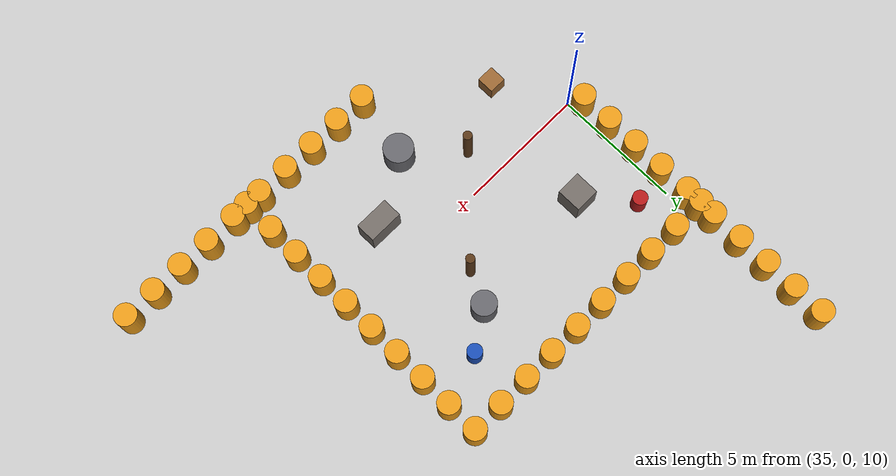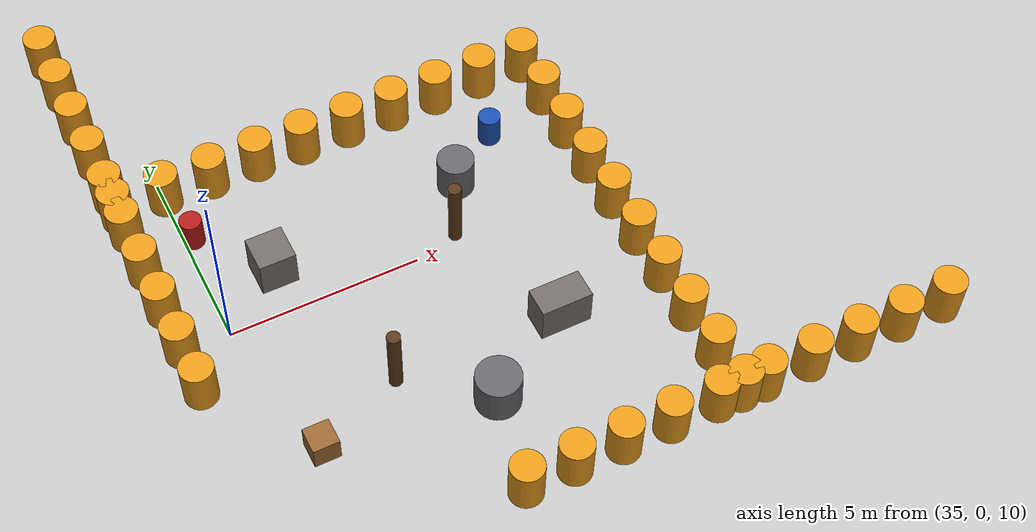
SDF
<sdf version="1.6">
 <world name="outdoor">
  <physics name="1ms" type="ignored">
   <max_step_size>0.004</max_step_size>
   <real_time_factor>1</real_time_factor>
  </physics>
  <plugin filename="ignition-gazebo-physics-system" name="ignition::gazebo::systems::Physics"/>
  <plugin filename="ignition-gazebo-user-commands-system" name="ignition::gazebo::systems::UserCommands"/>
  <plugin filename="ignition-gazebo-scene-broadcaster-system" name="ignition::gazebo::systems::SceneBroadcaster"/>
  <plugin filename="ignition-gazebo-sensors-system" name="ignition::gazebo::systems::Sensors">
   <render_engine>ogre2</render_engine>
  </plugin>
  <plugin filename="ignition-gazebo-navsat-system" name="ignition::gazebo::systems::NavSat"/>
  <spherical_coordinates>
   <surface_model>EARTH_WGS84</surface_model>
   <world_frame_orientation>ENU</world_frame_orientation>
   <latitude_deg>47.3977</latitude_deg>
   <longitude_deg>8.5456</longitude_deg>
   <elevation>0</elevation>
   <heading_deg>0</heading_deg>
  </spherical_coordinates>
  <plugin filename="ignition-gazebo-contact-system" name="ignition::gazebo::systems::Contact"/>
  <plugin filename="ignition-gazebo-imu-system" name="ignition::gazebo::systems::Imu"/>
  <light type="directional" name="sun">
   <pose>0 0 10 0 0 0</pose>
   <diffuse>0.8 0.8 0.8 1</diffuse>
   <specular>0.2 0.2 0.2 1</specular>
   <direction>-0.5 0.1 -0.9</direction>
  </light>
  <model name="post_0">
   <static>true</static>
   <pose>34.00 6.00 8.60 0 0 0</pose>
   <link name="link">
    <collision name="c">
     <geometry><cylinder><radius>0.45</radius><length>1.3</length></cylinder></geometry>
    </collision>
    <visual name="v">
     <geometry><cylinder><radius>0.45</radius><length>1.3</length></cylinder></geometry>
     <material><ambient>0.9 0.6 0.1 1</ambient><diffuse>0.9 0.6 0.1 1</diffuse></material>
    </visual>
   </link>
  </model>
  <model name="post_1">
   <static>true</static>
   <pose>52.00 -6.00 8.60 0 0 0</pose>
   <link name="link">
    <collision name="c">
     <geometry><cylinder><radius>0.45</radius><length>1.3</length></cylinder></geometry>
    </collision>
    <visual name="v">
     <geometry><cylinder><radius>0.45</radius><length>1.3</length></cylinder></geometry>
     <material><ambient>0.9 0.6 0.1 1</ambient><diffuse>0.9 0.6 0.1 1</diffuse></material>
    </visual>
   </link>
  </model>
  <model name="post_2">
   <static>true</static>
   <pose>46.00 -6.00 8.60 0 0 0</pose>
   <link name="link">
    <collision name="c">
     <geometry><cylinder><radius>0.45</radius><length>1.3</length></cylinder></geometry>
    </collision>
    <visual name="v">
     <geometry><cylinder><radius>0.45</radius><length>1.3</length></cylinder></geometry>
     <material><ambient>0.9 0.6 0.1 1</ambient><diffuse>0.9 0.6 0.1 1</diffuse></material>
    </visual>
   </link>
  </model>
  <model name="post_3">
   <static>true</static>
   <pose>34.00 12.00 8.60 0 0 0</pose>
   <link name="link">
    <collision name="c">
     <geometry><cylinder><radius>0.45</radius><length>1.3</length></cylinder></geometry>
    </collision>
    <visual name="v">
     <geometry><cylinder><radius>0.45</radius><length>1.3</length></cylinder></geometry>
     <material><ambient>0.9 0.6 0.1 1</ambient><diffuse>0.9 0.6 0.1 1</diffuse></material>
    </visual>
   </link>
  </model>
  <model name="post_4">
   <static>true</static>
   <pose>35.33 6.00 8.60 0 0 0</pose>
   <link name="link">
    <collision name="c">
     <geometry><cylinder><radius>0.45</radius><length>1.3</length></cylinder></geometry>
    </collision>
    <visual name="v">
     <geometry><cylinder><radius>0.45</radius><length>1.3</length></cylinder></geometry>
     <material><ambient>0.9 0.6 0.1 1</ambient><diffuse>0.9 0.6 0.1 1</diffuse></material>
    </visual>
   </link>
  </model>
  <model name="post_5">
   <static>true</static>
   <pose>50.67 -6.00 8.60 0 0 0</pose>
   <link name="link">
    <collision name="c">
     <geometry><cylinder><radius>0.45</radius><length>1.3</length></cylinder></geometry>
    </collision>
    <visual name="v">
     <geometry><cylinder><radius>0.45</radius><length>1.3</length></cylinder></geometry>
     <material><ambient>0.9 0.6 0.1 1</ambient><diffuse>0.9 0.6 0.1 1</diffuse></material>
    </visual>
   </link>
  </model>
  <model name="post_6">
   <static>true</static>
   <pose>46.00 -4.67 8.60 0 0 0</pose>
   <link name="link">
    <collision name="c">
     <geometry><cylinder><radius>0.45</radius><length>1.3</length></cylinder></geometry>
    </collision>
    <visual name="v">
     <geometry><cylinder><radius>0.45</radius><length>1.3</length></cylinder></geometry>
     <material><ambient>0.9 0.6 0.1 1</ambient><diffuse>0.9 0.6 0.1 1</diffuse></material>
    </visual>
   </link>
  </model>
  <model name="post_7">
   <static>true</static>
   <pose>34.00 10.67 8.60 0 0 0</pose>
   <link name="link">
    <collision name="c">
     <geometry><cylinder><radius>0.45</radius><length>1.3</length></cylinder></geometry>
    </collision>
    <visual name="v">
     <geometry><cylinder><radius>0.45</radius><length>1.3</length></cylinder></geometry>
     <material><ambient>0.9 0.6 0.1 1</ambient><diffuse>0.9 0.6 0.1 1</diffuse></material>
    </visual>
   </link>
  </model>
  <model name="post_8">
   <static>true</static>
   <pose>36.67 6.00 8.60 0 0 0</pose>
   <link name="link">
    <collision name="c">
     <geometry><cylinder><radius>0.45</radius><length>1.3</length></cylinder></geometry>
    </collision>
    <visual name="v">
     <geometry><cylinder><radius>0.45</radius><length>1.3</length></cylinder></geometry>
     <material><ambient>0.9 0.6 0.1 1</ambient><diffuse>0.9 0.6 0.1 1</diffuse></material>
    </visual>
   </link>
  </model>
  <model name="post_9">
   <static>true</static>
   <pose>49.33 -6.00 8.60 0 0 0</pose>
   <link name="link">
    <collision name="c">
     <geometry><cylinder><radius>0.45</radius><length>1.3</length></cylinder></geometry>
    </collision>
    <visual name="v">
     <geometry><cylinder><radius>0.45</radius><length>1.3</length></cylinder></geometry>
     <material><ambient>0.9 0.6 0.1 1</ambient><diffuse>0.9 0.6 0.1 1</diffuse></material>
    </visual>
   </link>
  </model>
  <model name="post_10">
   <static>true</static>
   <pose>46.00 -3.33 8.60 0 0 0</pose>
   <link name="link">
    <collision name="c">
     <geometry><cylinder><radius>0.45</radius><length>1.3</length></cylinder></geometry>
    </collision>
    <visual name="v">
     <geometry><cylinder><radius>0.45</radius><length>1.3</length></cylinder></geometry>
     <material><ambient>0.9 0.6 0.1 1</ambient><diffuse>0.9 0.6 0.1 1</diffuse></material>
    </visual>
   </link>
  </model>
  <model name="post_11">
   <static>true</static>
   <pose>34.00 9.33 8.60 0 0 0</pose>
   <link name="link">
    <collision name="c">
     <geometry><cylinder><radius>0.45</radius><length>1.3</length></cylinder></geometry>
    </collision>
    <visual name="v">
     <geometry><cylinder><radius>0.45</radius><length>1.3</length></cylinder></geometry>
     <material><ambient>0.9 0.6 0.1 1</ambient><diffuse>0.9 0.6 0.1 1</diffuse></material>
    </visual>
   </link>
  </model>
  <model name="post_12">
   <static>true</static>
   <pose>38.00 6.00 8.60 0 0 0</pose>
   <link name="link">
    <collision name="c">
     <geometry><cylinder><radius>0.45</radius><length>1.3</length></cylinder></geometry>
    </collision>
    <visual name="v">
     <geometry><cylinder><radius>0.45</radius><length>1.3</length></cylinder></geometry>
     <material><ambient>0.9 0.6 0.1 1</ambient><diffuse>0.9 0.6 0.1 1</diffuse></material>
    </visual>
   </link>
  </model>
  <model name="post_13">
   <static>true</static>
   <pose>48.00 -6.00 8.60 0 0 0</pose>
   <link name="link">
    <collision name="c">
     <geometry><cylinder><radius>0.45</radius><length>1.3</length></cylinder></geometry>
    </collision>
    <visual name="v">
     <geometry><cylinder><radius>0.45</radius><length>1.3</length></cylinder></geometry>
     <material><ambient>0.9 0.6 0.1 1</ambient><diffuse>0.9 0.6 0.1 1</diffuse></material>
    </visual>
   </link>
  </model>
  <model name="post_14">
   <static>true</static>
   <pose>46.00 -2.00 8.60 0 0 0</pose>
   <link name="link">
    <collision name="c">
     <geometry><cylinder><radius>0.45</radius><length>1.3</length></cylinder></geometry>
    </collision>
    <visual name="v">
     <geometry><cylinder><radius>0.45</radius><length>1.3</length></cylinder></geometry>
     <material><ambient>0.9 0.6 0.1 1</ambient><diffuse>0.9 0.6 0.1 1</diffuse></material>
    </visual>
   </link>
  </model>
  <model name="post_15">
   <static>true</static>
   <pose>34.00 8.00 8.60 0 0 0</pose>
   <link name="link">
    <collision name="c">
     <geometry><cylinder><radius>0.45</radius><length>1.3</length></cylinder></geometry>
    </collision>
    <visual name="v">
     <geometry><cylinder><radius>0.45</radius><length>1.3</length></cylinder></geometry>
     <material><ambient>0.9 0.6 0.1 1</ambient><diffuse>0.9 0.6 0.1 1</diffuse></material>
    </visual>
   </link>
  </model>
  <model name="post_16">
   <static>true</static>
   <pose>39.33 6.00 8.60 0 0 0</pose>
   <link name="link">
    <collision name="c">
     <geometry><cylinder><radius>0.45</radius><length>1.3</length></cylinder></geometry>
    </collision>
    <visual name="v">
     <geometry><cylinder><radius>0.45</radius><length>1.3</length></cylinder></geometry>
     <material><ambient>0.9 0.6 0.1 1</ambient><diffuse>0.9 0.6 0.1 1</diffuse></material>
    </visual>
   </link>
  </model>
  <model name="post_17">
   <static>true</static>
   <pose>46.67 -6.00 8.60 0 0 0</pose>
   <link name="link">
    <collision name="c">
     <geometry><cylinder><radius>0.45</radius><length>1.3</length></cylinder></geometry>
    </collision>
    <visual name="v">
     <geometry><cylinder><radius>0.45</radius><length>1.3</length></cylinder></geometry>
     <material><ambient>0.9 0.6 0.1 1</ambient><diffuse>0.9 0.6 0.1 1</diffuse></material>
    </visual>
   </link>
  </model>
  <model name="post_18">
   <static>true</static>
   <pose>46.00 -0.67 8.60 0 0 0</pose>
   <link name="link">
    <collision name="c">
     <geometry><cylinder><radius>0.45</radius><length>1.3</length></cylinder></geometry>
    </collision>
    <visual name="v">
     <geometry><cylinder><radius>0.45</radius><length>1.3</length></cylinder></geometry>
     <material><ambient>0.9 0.6 0.1 1</ambient><diffuse>0.9 0.6 0.1 1</diffuse></material>
    </visual>
   </link>
  </model>
  <model name="post_19">
   <static>true</static>
   <pose>34.00 6.67 8.60 0 0 0</pose>
   <link name="link">
    <collision name="c">
     <geometry><cylinder><radius>0.45</radius><length>1.3</length></cylinder></geometry>
    </collision>
    <visual name="v">
     <geometry><cylinder><radius>0.45</radius><length>1.3</length></cylinder></geometry>
     <material><ambient>0.9 0.6 0.1 1</ambient><diffuse>0.9 0.6 0.1 1</diffuse></material>
    </visual>
   </link>
  </model>
  <model name="post_20">
   <static>true</static>
   <pose>40.67 6.00 8.60 0 0 0</pose>
   <link name="link">
    <collision name="c">
     <geometry><cylinder><radius>0.45</radius><length>1.3</length></cylinder></geometry>
    </collision>
    <visual name="v">
     <geometry><cylinder><radius>0.45</radius><length>1.3</length></cylinder></geometry>
     <material><ambient>0.9 0.6 0.1 1</ambient><diffuse>0.9 0.6 0.1 1</diffuse></material>
    </visual>
   </link>
  </model>
  <model name="post_21">
   <static>true</static>
   <pose>45.33 -6.00 8.60 0 0 0</pose>
   <link name="link">
    <collision name="c">
     <geometry><cylinder><radius>0.45</radius><length>1.3</length></cylinder></geometry>
    </collision>
    <visual name="v">
     <geometry><cylinder><radius>0.45</radius><length>1.3</length></cylinder></geometry>
     <material><ambient>0.9 0.6 0.1 1</ambient><diffuse>0.9 0.6 0.1 1</diffuse></material>
    </visual>
   </link>
  </model>
  <model name="post_22">
   <static>true</static>
   <pose>46.00 0.67 8.60 0 0 0</pose>
   <link name="link">
    <collision name="c">
     <geometry><cylinder><radius>0.45</radius><length>1.3</length></cylinder></geometry>
    </collision>
    <visual name="v">
     <geometry><cylinder><radius>0.45</radius><length>1.3</length></cylinder></geometry>
     <material><ambient>0.9 0.6 0.1 1</ambient><diffuse>0.9 0.6 0.1 1</diffuse></material>
    </visual>
   </link>
  </model>
  <model name="post_23">
   <static>true</static>
   <pose>34.00 5.33 8.60 0 0 0</pose>
   <link name="link">
    <collision name="c">
     <geometry><cylinder><radius>0.45</radius><length>1.3</length></cylinder></geometry>
    </collision>
    <visual name="v">
     <geometry><cylinder><radius>0.45</radius><length>1.3</length></cylinder></geometry>
     <material><ambient>0.9 0.6 0.1 1</ambient><diffuse>0.9 0.6 0.1 1</diffuse></material>
    </visual>
   </link>
  </model>
  <model name="post_24">
   <static>true</static>
   <pose>42.00 6.00 8.60 0 0 0</pose>
   <link name="link">
    <collision name="c">
     <geometry><cylinder><radius>0.45</radius><length>1.3</length></cylinder></geometry>
    </collision>
    <visual name="v">
     <geometry><cylinder><radius>0.45</radius><length>1.3</length></cylinder></geometry>
     <material><ambient>0.9 0.6 0.1 1</ambient><diffuse>0.9 0.6 0.1 1</diffuse></material>
    </visual>
   </link>
  </model>
  <model name="post_25">
   <static>true</static>
   <pose>44.00 -6.00 8.60 0 0 0</pose>
   <link name="link">
    <collision name="c">
     <geometry><cylinder><radius>0.45</radius><length>1.3</length></cylinder></geometry>
    </collision>
    <visual name="v">
     <geometry><cylinder><radius>0.45</radius><length>1.3</length></cylinder></geometry>
     <material><ambient>0.9 0.6 0.1 1</ambient><diffuse>0.9 0.6 0.1 1</diffuse></material>
    </visual>
   </link>
  </model>
  <model name="post_26">
   <static>true</static>
   <pose>46.00 2.00 8.60 0 0 0</pose>
   <link name="link">
    <collision name="c">
     <geometry><cylinder><radius>0.45</radius><length>1.3</length></cylinder></geometry>
    </collision>
    <visual name="v">
     <geometry><cylinder><radius>0.45</radius><length>1.3</length></cylinder></geometry>
     <material><ambient>0.9 0.6 0.1 1</ambient><diffuse>0.9 0.6 0.1 1</diffuse></material>
    </visual>
   </link>
  </model>
  <model name="post_27">
   <static>true</static>
   <pose>34.00 4.00 8.60 0 0 0</pose>
   <link name="link">
    <collision name="c">
     <geometry><cylinder><radius>0.45</radius><length>1.3</length></cylinder></geometry>
    </collision>
    <visual name="v">
     <geometry><cylinder><radius>0.45</radius><length>1.3</length></cylinder></geometry>
     <material><ambient>0.9 0.6 0.1 1</ambient><diffuse>0.9 0.6 0.1 1</diffuse></material>
    </visual>
   </link>
  </model>
  <model name="post_28">
   <static>true</static>
   <pose>43.33 6.00 8.60 0 0 0</pose>
   <link name="link">
    <collision name="c">
     <geometry><cylinder><radius>0.45</radius><length>1.3</length></cylinder></geometry>
    </collision>
    <visual name="v">
     <geometry><cylinder><radius>0.45</radius><length>1.3</length></cylinder></geometry>
     <material><ambient>0.9 0.6 0.1 1</ambient><diffuse>0.9 0.6 0.1 1</diffuse></material>
    </visual>
   </link>
  </model>
  <model name="post_29">
   <static>true</static>
   <pose>42.67 -6.00 8.60 0 0 0</pose>
   <link name="link">
    <collision name="c">
     <geometry><cylinder><radius>0.45</radius><length>1.3</length></cylinder></geometry>
    </collision>
    <visual name="v">
     <geometry><cylinder><radius>0.45</radius><length>1.3</length></cylinder></geometry>
     <material><ambient>0.9 0.6 0.1 1</ambient><diffuse>0.9 0.6 0.1 1</diffuse></material>
    </visual>
   </link>
  </model>
  <model name="post_30">
   <static>true</static>
   <pose>46.00 3.33 8.60 0 0 0</pose>
   <link name="link">
    <collision name="c">
     <geometry><cylinder><radius>0.45</radius><length>1.3</length></cylinder></geometry>
    </collision>
    <visual name="v">
     <geometry><cylinder><radius>0.45</radius><length>1.3</length></cylinder></geometry>
     <material><ambient>0.9 0.6 0.1 1</ambient><diffuse>0.9 0.6 0.1 1</diffuse></material>
    </visual>
   </link>
  </model>
  <model name="post_31">
   <static>true</static>
   <pose>34.00 2.67 8.60 0 0 0</pose>
   <link name="link">
    <collision name="c">
     <geometry><cylinder><radius>0.45</radius><length>1.3</length></cylinder></geometry>
    </collision>
    <visual name="v">
     <geometry><cylinder><radius>0.45</radius><length>1.3</length></cylinder></geometry>
     <material><ambient>0.9 0.6 0.1 1</ambient><diffuse>0.9 0.6 0.1 1</diffuse></material>
    </visual>
   </link>
  </model>
  <model name="post_32">
   <static>true</static>
   <pose>44.67 6.00 8.60 0 0 0</pose>
   <link name="link">
    <collision name="c">
     <geometry><cylinder><radius>0.45</radius><length>1.3</length></cylinder></geometry>
    </collision>
    <visual name="v">
     <geometry><cylinder><radius>0.45</radius><length>1.3</length></cylinder></geometry>
     <material><ambient>0.9 0.6 0.1 1</ambient><diffuse>0.9 0.6 0.1 1</diffuse></material>
    </visual>
   </link>
  </model>
  <model name="post_33">
   <static>true</static>
   <pose>41.33 -6.00 8.60 0 0 0</pose>
   <link name="link">
    <collision name="c">
     <geometry><cylinder><radius>0.45</radius><length>1.3</length></cylinder></geometry>
    </collision>
    <visual name="v">
     <geometry><cylinder><radius>0.45</radius><length>1.3</length></cylinder></geometry>
     <material><ambient>0.9 0.6 0.1 1</ambient><diffuse>0.9 0.6 0.1 1</diffuse></material>
    </visual>
   </link>
  </model>
  <model name="post_34">
   <static>true</static>
   <pose>46.00 4.67 8.60 0 0 0</pose>
   <link name="link">
    <collision name="c">
     <geometry><cylinder><radius>0.45</radius><length>1.3</length></cylinder></geometry>
    </collision>
    <visual name="v">
     <geometry><cylinder><radius>0.45</radius><length>1.3</length></cylinder></geometry>
     <material><ambient>0.9 0.6 0.1 1</ambient><diffuse>0.9 0.6 0.1 1</diffuse></material>
    </visual>
   </link>
  </model>
  <model name="post_35">
   <static>true</static>
   <pose>34.00 1.33 8.60 0 0 0</pose>
   <link name="link">
    <collision name="c">
     <geometry><cylinder><radius>0.45</radius><length>1.3</length></cylinder></geometry>
    </collision>
    <visual name="v">
     <geometry><cylinder><radius>0.45</radius><length>1.3</length></cylinder></geometry>
     <material><ambient>0.9 0.6 0.1 1</ambient><diffuse>0.9 0.6 0.1 1</diffuse></material>
    </visual>
   </link>
  </model>
  <model name="post_36">
   <static>true</static>
   <pose>46.00 6.00 8.60 0 0 0</pose>
   <link name="link">
    <collision name="c">
     <geometry><cylinder><radius>0.45</radius><length>1.3</length></cylinder></geometry>
    </collision>
    <visual name="v">
     <geometry><cylinder><radius>0.45</radius><length>1.3</length></cylinder></geometry>
     <material><ambient>0.9 0.6 0.1 1</ambient><diffuse>0.9 0.6 0.1 1</diffuse></material>
    </visual>
   </link>
  </model>
  <model name="post_37">
   <static>true</static>
   <pose>40.00 -6.00 8.60 0 0 0</pose>
   <link name="link">
    <collision name="c">
     <geometry><cylinder><radius>0.45</radius><length>1.3</length></cylinder></geometry>
    </collision>
    <visual name="v">
     <geometry><cylinder><radius>0.45</radius><length>1.3</length></cylinder></geometry>
     <material><ambient>0.9 0.6 0.1 1</ambient><diffuse>0.9 0.6 0.1 1</diffuse></material>
    </visual>
   </link>
  </model>
  <model name="post_38">
   <static>true</static>
   <pose>46.00 6.00 8.60 0 0 0</pose>
   <link name="link">
    <collision name="c">
     <geometry><cylinder><radius>0.45</radius><length>1.3</length></cylinder></geometry>
    </collision>
    <visual name="v">
     <geometry><cylinder><radius>0.45</radius><length>1.3</length></cylinder></geometry>
     <material><ambient>0.9 0.6 0.1 1</ambient><diffuse>0.9 0.6 0.1 1</diffuse></material>
    </visual>
   </link>
  </model>
  <model name="post_39">
   <static>true</static>
   <pose>34.00 0.00 8.60 0 0 0</pose>
   <link name="link">
    <collision name="c">
     <geometry><cylinder><radius>0.45</radius><length>1.3</length></cylinder></geometry>
    </collision>
    <visual name="v">
     <geometry><cylinder><radius>0.45</radius><length>1.3</length></cylinder></geometry>
     <material><ambient>0.9 0.6 0.1 1</ambient><diffuse>0.9 0.6 0.1 1</diffuse></material>
    </visual>
   </link>
  </model>
  <model name="rock_a">
   <static>true</static>
   <pose>37.00 2.50 8.70 0 0 0</pose>
   <link name="link">
    <collision name="c"><geometry><box><size>1.0 1.0 1.1</size></box></geometry></collision>
    <visual name="v">
     <geometry><box><size>1.0 1.0 1.1</size></box></geometry>
     <material><ambient>0.45 0.42 0.4 1</ambient><diffuse>0.45 0.42 0.4 1</diffuse></material>
    </visual>
   </link>
  </model>
  <model name="rock_b">
   <static>true</static>
   <pose>43.00 -2.00 8.70 0 0 0</pose>
   <link name="link">
    <collision name="c"><geometry><box><size>1.4 0.8 1.1</size></box></geometry></collision>
    <visual name="v">
     <geometry><box><size>1.4 0.8 1.1</size></box></geometry>
     <material><ambient>0.45 0.42 0.4 1</ambient><diffuse>0.45 0.42 0.4 1</diffuse></material>
    </visual>
   </link>
  </model>
  <model name="rock_c">
   <static>true</static>
   <pose>40.50 -3.50 8.70 0 0 0</pose>
   <link name="link">
    <collision name="c">
     <geometry><cylinder><radius>0.6</radius><length>1.1</length></cylinder></geometry>
    </collision>
    <visual name="v">
     <geometry><cylinder><radius>0.6</radius><length>1.1</length></cylinder></geometry>
     <material><ambient>0.4 0.4 0.42 1</ambient><diffuse>0.4 0.4 0.42 1</diffuse></material>
    </visual>
   </link>
  </model>
  <model name="rock_d">
   <static>true</static>
   <pose>42.50 3.00 8.70 0 0 0</pose>
   <link name="link">
    <collision name="c">
     <geometry><cylinder><radius>0.5</radius><length>1.1</length></cylinder></geometry>
    </collision>
    <visual name="v">
     <geometry><cylinder><radius>0.5</radius><length>1.1</length></cylinder></geometry>
     <material><ambient>0.4 0.4 0.42 1</ambient><diffuse>0.4 0.4 0.42 1</diffuse></material>
    </visual>
   </link>
  </model>
  <model name="crate_a">
   <static>true</static>
   <pose>36.00 -3.00 8.70 0 0 0</pose>
   <link name="link">
    <collision name="c"><geometry><box><size>0.7 0.7 0.7</size></box></geometry></collision>
    <visual name="v">
     <geometry><box><size>0.7 0.7 0.7</size></box></geometry>
     <material><ambient>0.6 0.4 0.2 1</ambient><diffuse>0.6 0.4 0.2 1</diffuse></material>
    </visual>
   </link>
  </model>
  <model name="barrel_a">
   <static>true</static>
   <pose>44.00 4.00 8.70 0 0 0</pose>
   <link name="link">
    <collision name="c">
     <geometry><cylinder><radius>0.3</radius><length>0.9</length></cylinder></geometry>
    </collision>
    <visual name="v">
     <geometry><cylinder><radius>0.3</radius><length>0.9</length></cylinder></geometry>
     <material><ambient>0.1 0.3 0.7 1</ambient><diffuse>0.1 0.3 0.7 1</diffuse></material>
    </visual>
   </link>
  </model>
  <model name="barrel_c">
   <static>true</static>
   <pose>35.50 4.30 8.70 0 0 0</pose>
   <link name="link">
    <collision name="c">
     <geometry><cylinder><radius>0.3</radius><length>0.9</length></cylinder></geometry>
    </collision>
    <visual name="v">
     <geometry><cylinder><radius>0.3</radius><length>0.9</length></cylinder></geometry>
     <material><ambient>0.7 0.1 0.1 1</ambient><diffuse>0.7 0.1 0.1 1</diffuse></material>
    </visual>
   </link>
  </model>
  <model name="trunk_a">
   <static>true</static>
   <pose>38.50 -1.80 9.00 0 0 0</pose>
   <link name="link">
    <collision name="c">
     <geometry><cylinder><radius>0.18</radius><length>2.0</length></cylinder></geometry>
    </collision>
    <visual name="v">
     <geometry><cylinder><radius>0.18</radius><length>2.0</length></cylinder></geometry>
     <material><ambient>0.35 0.22 0.1 1</ambient><diffuse>0.35 0.22 0.1 1</diffuse></material>
    </visual>
   </link>
  </model>
  <model name="trunk_b">
   <static>true</static>
   <pose>41.80 1.60 9.00 0 0 0</pose>
   <link name="link">
    <collision name="c">
     <geometry><cylinder><radius>0.18</radius><length>2.0</length></cylinder></geometry>
    </collision>
    <visual name="v">
     <geometry><cylinder><radius>0.18</radius><length>2.0</length></cylinder></geometry>
     <material><ambient>0.35 0.22 0.1 1</ambient><diffuse>0.35 0.22 0.1 1</diffuse></material>
    </visual>
   </link>
  </model>
  <model name="world_monitor_cam">
   <static>true</static>
   <pose>48.0 8.0 15.0 0 0.55 -2.356</pose>
   <link name="link">
    <sensor name="monitor_camera" type="camera">
     <always_on>true</always_on>
     <update_rate>10</update_rate>
     <topic>world_monitor/image_raw</topic>
     <camera>
      <horizontal_fov>1.3</horizontal_fov>
      <image><width>960</width><height>540</height><format>R8G8B8</format></image>
      <clip><near>0.05</near><far>80.0</far></clip>
     </camera>
    </sensor>
   </link>
  </model>
 </world>
</sdf>
